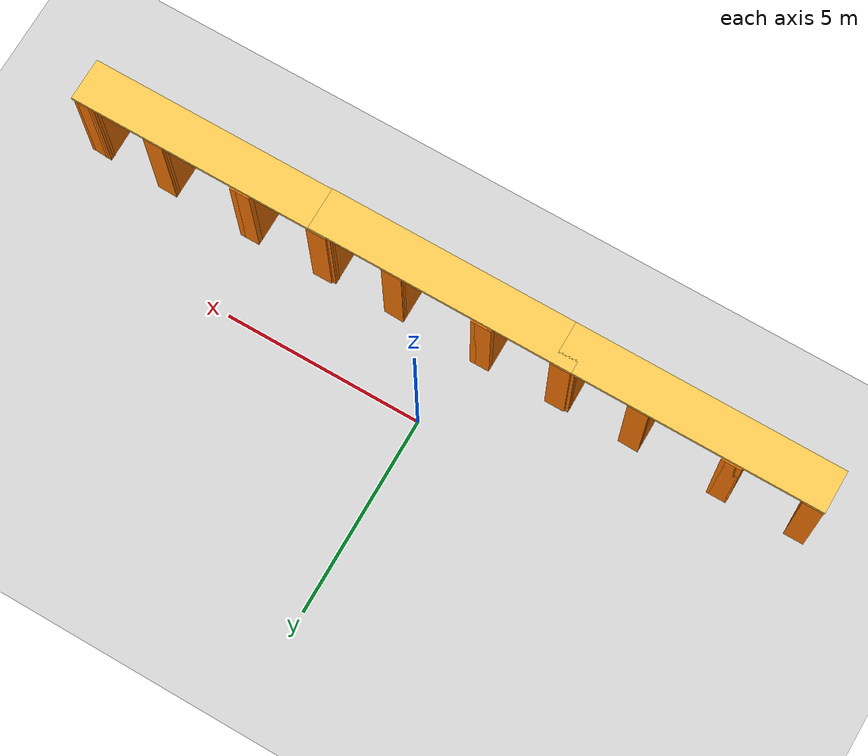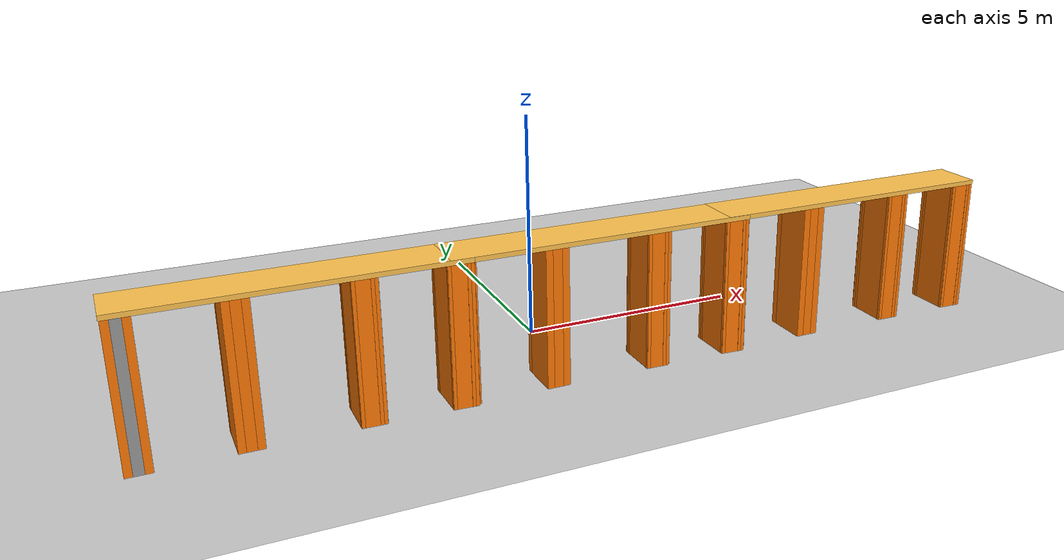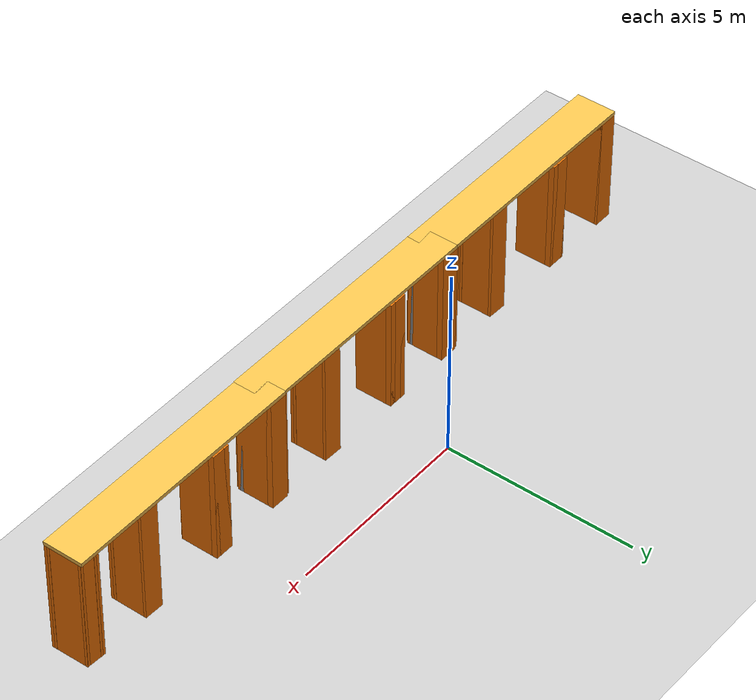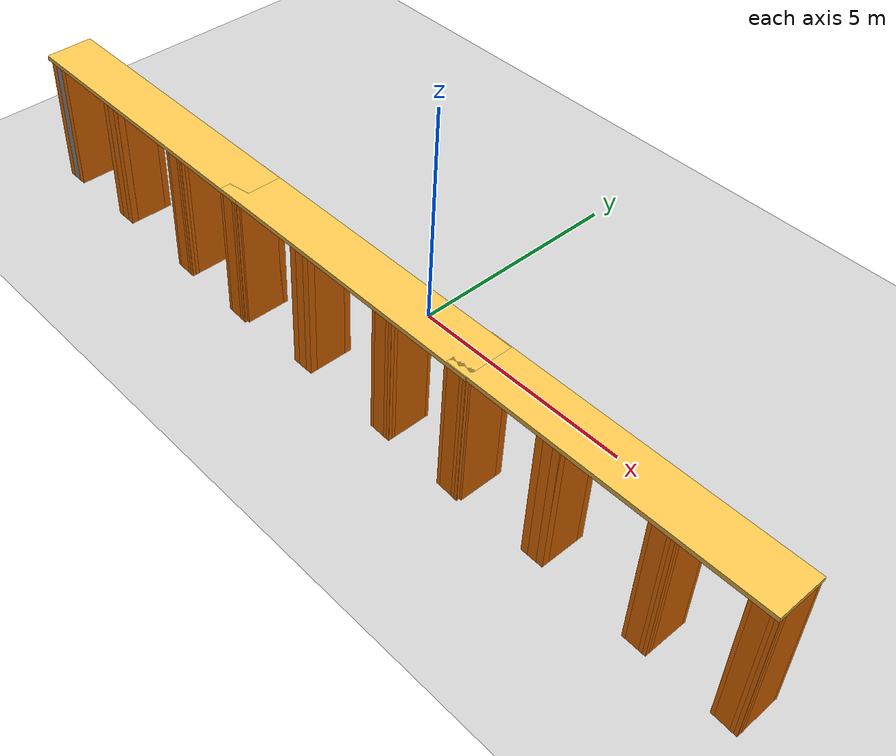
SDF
<sdf version="1.7">
 <world name="default">
  <light name="sun" type="directional">
   <pose>0 0 10 0 -0 0</pose>
   <diffuse>0.8 0.8 0.8 1</diffuse>
   <specular>0.2 0.2 0.2 1</specular>
   <attenuation>
    <range>1000</range>
    <constant>0.9</constant>
    <linear>0.01</linear>
    <quadratic>0.001</quadratic>
   </attenuation>
   <direction>-0.5 0.1 -0.9</direction>
   <spot><inner_angle>0</inner_angle><outer_angle>0</outer_angle><falloff>0</falloff></spot>
  </light>
  <model name="ground_plane">
   <static>1</static>
   <link name="link">
    <collision name="collision">
     <geometry><plane><normal>0 0 1</normal><size>100 100</size></plane></geometry>
     <surface>
      <contact><collide_bitmask>65535</collide_bitmask></contact>
      <friction><ode><mu>100</mu><mu2>50</mu2></ode></friction>
     </surface>
    </collision>
    <visual name="visual">
     <cast_shadows>0</cast_shadows>
     <geometry><plane><normal>0 0 1</normal><size>100 100</size></plane></geometry>
     <material>
      <script><uri>file://media/materials/scripts/gazebo.material</uri><name>Gazebo/Grey</name></script>
     </material>
    </visual>
   </link>
  </model>
  <gravity>0 0 -9.8</gravity>
  <magnetic_field>6e-06 2.3e-05 -4.2e-05</magnetic_field>
  <atmosphere type="adiabatic"/>
  <physics type="ode">
   <max_step_size>0.001</max_step_size>
   <real_time_factor>1</real_time_factor>
   <real_time_update_rate>1000</real_time_update_rate>
  </physics>
  <scene><ambient>0.4 0.4 0.4 1</ambient><background>0.7 0.7 0.7 1</background><shadows>1</shadows></scene>
  <audio><device>default</device></audio>
  <spherical_coordinates>
   <surface_model>EARTH_WGS84</surface_model>
   <latitude_deg>0</latitude_deg>
   <longitude_deg>0</longitude_deg>
   <elevation>0</elevation>
   <heading_deg>0</heading_deg>
  </spherical_coordinates>
  <model name="Bridge">
   <pose>0.544212 -1.45555 0 0 -0 0</pose>
   <link name="Floor_8">
    <collision name="Floor_8_Collision">
     <geometry><box><size>6.54635 1.04767 0.1</size></box></geometry>
     <pose>0 0 0.05 0 -0 0</pose>
    </collision>
    <visual name="Floor_8_Visual">
     <pose>0 0 0.05 0 -0 0</pose>
     <geometry><box><size>6.54635 1.04767 0.1</size></box></geometry>
     <material>
      <script><uri>file://media/materials/scripts/gazebo.material</uri><name>Gazebo/Grey</name></script>
      <ambient>1 0.764706 0.305882 1</ambient>
     </material>
     <meta><layer>1</layer></meta>
    </visual>
    <pose>-0.00145 -0.931714 3 0 -0 0</pose>
   </link>
   <link name="Wall_108">
    <collision name="Wall_108_Collision">
     <geometry><box><size>1.00518 0.15 0.01</size></box></geometry>
     <pose>0 0 0.005 0 -0 0</pose>
    </collision>
    <visual name="Wall_108_Visual">
     <pose>0 0 0.005 0 -0 0</pose>
     <geometry><box><size>1.00518 0.15 0.01</size></box></geometry>
     <material>
      <script><uri>file://media/materials/scripts/gazebo.material</uri><name>Gazebo/Grey</name></script>
      <ambient>1 1 1 1</ambient>
     </material>
     <meta><layer>1</layer></meta>
    </visual>
    <pose>3.19079 -0.951952 3 0 -0 1.58249</pose>
   </link>
   <link name="Wall_113">
    <collision name="Wall_113_Collision">
     <geometry><box><size>0.977316 0.15 0.01</size></box></geometry>
     <pose>0 0 0.005 0 -0 0</pose>
    </collision>
    <visual name="Wall_113_Visual">
     <pose>0 0 0.005 0 -0 0</pose>
     <geometry><box><size>0.977316 0.15 0.01</size></box></geometry>
     <material>
      <script><uri>file://media/materials/scripts/gazebo.material</uri><name>Gazebo/Grey</name></script>
      <ambient>1 1 1 1</ambient>
     </material>
     <meta><layer>1</layer></meta>
    </visual>
    <pose>-3.19071 -0.897952 3 0 -0 -1.58893</pose>
   </link>
   <link name="Wall_19">
    <collision name="Wall_19_Collision">
     <geometry><box><size>0.5 0.15 3</size></box></geometry>
     <pose>0 0 1.5 0 -0 0</pose>
    </collision>
    <visual name="Wall_19_Visual">
     <pose>0 0 1.5 0 -0 0</pose>
     <geometry><box><size>0.5 0.15 3</size></box></geometry>
     <material>
      <script><uri>file://media/materials/scripts/gazebo.material</uri><name>Gazebo/Grey</name></script>
      <ambient>0.996078 0.47451 0.0196078 1</ambient>
     </material>
     <meta><layer>0</layer></meta>
    </visual>
    <pose>-1.07921 -1.29445 0 0 -0 0</pose>
   </link>
   <link name="Wall_20">
    <collision name="Wall_20_Collision">
     <geometry><box><size>1 0.15 3</size></box></geometry>
     <pose>0 0 1.5 0 -0 0</pose>
    </collision>
    <visual name="Wall_20_Visual">
     <pose>0 0 1.5 0 -0 0</pose>
     <geometry><box><size>1 0.15 3</size></box></geometry>
     <material>
      <script><uri>file://media/materials/scripts/gazebo.material</uri><name>Gazebo/Grey</name></script>
      <ambient>0.996078 0.47451 0.0196078 1</ambient>
     </material>
     <meta><layer>0</layer></meta>
    </visual>
    <pose>-0.904212 -0.869452 0 0 -0 1.5708</pose>
   </link>
   <link name="Wall_21">
    <collision name="Wall_21_Collision">
     <geometry><box><size>0.5 0.15 3</size></box></geometry>
     <pose>0 0 1.5 0 -0 0</pose>
    </collision>
    <visual name="Wall_21_Visual">
     <pose>0 0 1.5 0 -0 0</pose>
     <geometry><box><size>0.5 0.15 3</size></box></geometry>
     <material>
      <script><uri>file://media/materials/scripts/gazebo.material</uri><name>Gazebo/Grey</name></script>
      <ambient>0.996078 0.47451 0.0196078 1</ambient>
     </material>
     <meta><layer>0</layer></meta>
    </visual>
    <pose>-1.07921 -0.444452 0 0 -0 3.14159</pose>
   </link>
   <link name="Wall_22">
    <collision name="Wall_22_Collision">
     <geometry><box><size>1 0.15 3</size></box></geometry>
     <pose>0 0 1.5 0 -0 0</pose>
    </collision>
    <visual name="Wall_22_Visual">
     <pose>0 0 1.5 0 -0 0</pose>
     <geometry><box><size>1 0.15 3</size></box></geometry>
     <material>
      <script><uri>file://media/materials/scripts/gazebo.material</uri><name>Gazebo/Grey</name></script>
      <ambient>0.996078 0.47451 0.0196078 1</ambient>
     </material>
     <meta><layer>0</layer></meta>
    </visual>
    <pose>-1.25421 -0.869452 0 0 -0 -1.5708</pose>
   </link>
   <link name="Wall_24">
    <collision name="Wall_24_Collision">
     <geometry><box><size>0.510139 0.15 3</size></box></geometry>
     <pose>0 0 1.5 0 -0 0</pose>
    </collision>
    <visual name="Wall_24_Visual">
     <pose>0 0 1.5 0 -0 0</pose>
     <geometry><box><size>0.510139 0.15 3</size></box></geometry>
     <material>
      <script><uri>file://media/materials/scripts/gazebo.material</uri><name>Gazebo/Grey</name></script>
      <ambient>0.996078 0.47451 0.0196078 1</ambient>
     </material>
     <meta><layer>0</layer></meta>
    </visual>
    <pose>1.18579 -1.31945 0 0 -0 -0.027771</pose>
   </link>
   <link name="Wall_25">
    <collision name="Wall_25_Collision">
     <geometry><box><size>0.97 0.15 3</size></box></geometry>
     <pose>0 0 1.5 0 -0 0</pose>
    </collision>
    <visual name="Wall_25_Visual">
     <pose>0 0 1.5 0 -0 0</pose>
     <geometry><box><size>0.97 0.15 3</size></box></geometry>
     <material>
      <script><uri>file://media/materials/scripts/gazebo.material</uri><name>Gazebo/Grey</name></script>
      <ambient>0.996078 0.47451 0.0196078 1</ambient>
     </material>
     <meta><layer>0</layer></meta>
    </visual>
    <pose>1.36579 -0.914452 0 0 -0 1.5708</pose>
   </link>
   <link name="Wall_26">
    <collision name="Wall_26_Collision">
     <geometry><box><size>0.510139 0.15 3</size></box></geometry>
     <pose>0 0 1.5 0 -0 0</pose>
    </collision>
    <visual name="Wall_26_Visual">
     <pose>0 0 1.5 0 -0 0</pose>
     <geometry><box><size>0.510139 0.15 3</size></box></geometry>
     <material>
      <script><uri>file://media/materials/scripts/gazebo.material</uri><name>Gazebo/Grey</name></script>
      <ambient>0.996078 0.47451 0.0196078 1</ambient>
     </material>
     <meta><layer>0</layer></meta>
    </visual>
    <pose>1.18579 -0.489452 0 0 -0 3.11382</pose>
   </link>
   <link name="Wall_27">
    <collision name="Wall_27_Collision">
     <geometry><box><size>0.97 0.15 3</size></box></geometry>
     <pose>0 0 1.5 0 -0 0</pose>
    </collision>
    <visual name="Wall_27_Visual">
     <pose>0 0 1.5 0 -0 0</pose>
     <geometry><box><size>0.97 0.15 3</size></box></geometry>
     <material>
      <script><uri>file://media/materials/scripts/gazebo.material</uri><name>Gazebo/Grey</name></script>
      <ambient>0.996078 0.47451 0.0196078 1</ambient>
     </material>
     <meta><layer>0</layer></meta>
    </visual>
    <pose>1.00579 -0.904452 0 0 -0 -1.5708</pose>
   </link>
   <link name="Wall_31">
    <collision name="Wall_31_Collision">
     <geometry><box><size>0.530526 0.15 3</size></box></geometry>
     <pose>0 0 1.5 0 -0 0</pose>
    </collision>
    <visual name="Wall_31_Visual">
     <pose>0 0 1.5 0 -0 0</pose>
     <geometry><box><size>0.530526 0.15 3</size></box></geometry>
     <material>
      <script><uri>file://media/materials/scripts/gazebo.material</uri><name>Gazebo/Grey</name></script>
      <ambient>0.996078 0.47451 0.0196078 1</ambient>
     </material>
     <meta><layer>0</layer></meta>
    </visual>
    <pose>3.00579 -1.35445 0 0 -0 -0.052583</pose>
   </link>
   <link name="Wall_32">
    <collision name="Wall_32_Collision">
     <geometry><box><size>0.99006 0.15 3</size></box></geometry>
     <pose>0 0 1.5 0 -0 0</pose>
    </collision>
    <visual name="Wall_32_Visual">
     <pose>0 0 1.5 0 -0 0</pose>
     <geometry><box><size>0.99006 0.15 3</size></box></geometry>
     <material>
      <script><uri>file://media/materials/scripts/gazebo.material</uri><name>Gazebo/Grey</name></script>
      <ambient>0.996078 0.47451 0.0196078 1</ambient>
     </material>
     <meta><layer>0</layer></meta>
    </visual>
    <pose>3.19079 -0.944452 0 0 -0 1.5827</pose>
   </link>
   <link name="Wall_33">
    <collision name="Wall_33_Collision">
     <geometry><box><size>0.530526 0.15 3</size></box></geometry>
     <pose>0 0 1.5 0 -0 0</pose>
    </collision>
    <visual name="Wall_33_Visual">
     <pose>0 0 1.5 0 -0 0</pose>
     <geometry><box><size>0.530526 0.15 3</size></box></geometry>
     <material>
      <script><uri>file://media/materials/scripts/gazebo.material</uri><name>Gazebo/Grey</name></script>
      <ambient>0.996078 0.47451 0.0196078 1</ambient>
     </material>
     <meta><layer>0</layer></meta>
    </visual>
    <pose>2.99579 -0.514452 0 0 -0 3.08901</pose>
   </link>
   <link name="Wall_34">
    <collision name="Wall_34_Collision">
     <geometry><box><size>0.99006 0.15 3</size></box></geometry>
     <pose>0 0 1.5 0 -0 0</pose>
    </collision>
    <visual name="Wall_34_Visual">
     <pose>0 0 1.5 0 -0 0</pose>
     <geometry><box><size>0.99006 0.15 3</size></box></geometry>
     <material>
      <script><uri>file://media/materials/scripts/gazebo.material</uri><name>Gazebo/Grey</name></script>
      <ambient>0.996078 0.47451 0.0196078 1</ambient>
     </material>
     <meta><layer>0</layer></meta>
    </visual>
    <pose>2.81079 -0.924452 0 0 -0 -1.55889</pose>
   </link>
   <link name="Wall_90">
    <collision name="Wall_90_Collision">
     <geometry><box><size>0.977316 0.15 3</size></box></geometry>
     <pose>0 0 1.5 0 -0 0</pose>
    </collision>
    <visual name="Wall_90_Visual">
     <pose>0 0 1.5 0 -0 0</pose>
     <geometry><box><size>0.977316 0.15 3</size></box></geometry>
     <material>
      <script><uri>file://media/materials/scripts/gazebo.material</uri><name>Gazebo/Grey</name></script>
      <ambient>0.996078 0.47451 0.0196078 1</ambient>
     </material>
     <meta><layer>0</layer></meta>
    </visual>
    <pose>-2.83321 -0.897794 0 0 -0 1.5708</pose>
   </link>
   <link name="Wall_91">
    <collision name="Wall_91_Collision">
     <geometry><box><size>0.5 0.15 3</size></box></geometry>
     <pose>0 0 1.5 0 -0 0</pose>
    </collision>
    <visual name="Wall_91_Visual">
     <pose>0 0 1.5 0 -0 0</pose>
     <geometry><box><size>0.5 0.15 3</size></box></geometry>
     <material>
      <script><uri>file://media/materials/scripts/gazebo.material</uri><name>Gazebo/Grey</name></script>
      <ambient>0.996078 0.47451 0.0196078 1</ambient>
     </material>
     <meta><layer>0</layer></meta>
    </visual>
    <pose>-3.00821 -0.476575 0 0 -0 3.14159</pose>
   </link>
   <link name="Wall_92">
    <collision name="Wall_92_Collision">
     <geometry><box><size>0.977316 0.15 3</size></box></geometry>
     <pose>0 0 1.5 0 -0 0</pose>
    </collision>
    <visual name="Wall_92_Visual">
     <pose>0 0 1.5 0 -0 0</pose>
     <geometry><box><size>0.977316 0.15 3</size></box></geometry>
     <material>
      <script><uri>file://media/materials/scripts/gazebo.material</uri><name>Gazebo/Grey</name></script>
      <ambient>0.996078 0.47451 0.0196078 1</ambient>
     </material>
     <meta><layer>0</layer></meta>
    </visual>
    <pose>-3.18321 -0.897794 0 0 -0 -1.5708</pose>
   </link>
   <link name="Wall_93">
    <collision name="Wall_93_Collision">
     <geometry><box><size>0.5 0.15 3</size></box></geometry>
     <pose>0 0 1.5 0 -0 0</pose>
    </collision>
    <visual name="Wall_93_Visual">
     <pose>0 0 1.5 0 -0 0</pose>
     <geometry><box><size>0.5 0.15 3</size></box></geometry>
     <material>
      <script><uri>file://media/materials/scripts/gazebo.material</uri><name>Gazebo/Grey</name></script>
      <ambient>1 1 1 1</ambient>
     </material>
     <meta><layer>0</layer></meta>
    </visual>
    <pose>-3.00821 -1.31145 0 0 -0 0</pose>
   </link>
   <static>1</static>
  </model>
  <model name="Bridge_0">
   <pose>-5.5371 -1.45832 0 0 -0 0</pose>
   <link name="Floor_8">
    <collision name="Floor_8_Collision">
     <geometry><box><size>6.54635 1.04767 0.1</size></box></geometry>
     <pose>0 0 0.05 0 -0 0</pose>
    </collision>
    <visual name="Floor_8_Visual">
     <pose>0 0 0.05 0 -0 0</pose>
     <geometry><box><size>6.54635 1.04767 0.1</size></box></geometry>
     <material>
      <script><uri>file://media/materials/scripts/gazebo.material</uri><name>Gazebo/Grey</name></script>
      <ambient>1 0.764706 0.305882 1</ambient>
     </material>
     <meta><layer>1</layer></meta>
    </visual>
    <pose>-0.00145 -0.931714 3 0 -0 0</pose>
   </link>
   <link name="Wall_108">
    <collision name="Wall_108_Collision">
     <geometry><box><size>1.00518 0.15 0.01</size></box></geometry>
     <pose>0 0 0.005 0 -0 0</pose>
    </collision>
    <visual name="Wall_108_Visual">
     <pose>0 0 0.005 0 -0 0</pose>
     <geometry><box><size>1.00518 0.15 0.01</size></box></geometry>
     <material>
      <script><uri>file://media/materials/scripts/gazebo.material</uri><name>Gazebo/Grey</name></script>
      <ambient>1 1 1 1</ambient>
     </material>
     <meta><layer>1</layer></meta>
    </visual>
    <pose>3.19079 -0.951952 3 0 -0 1.58249</pose>
   </link>
   <link name="Wall_113">
    <collision name="Wall_113_Collision">
     <geometry><box><size>0.977316 0.15 0.01</size></box></geometry>
     <pose>0 0 0.005 0 -0 0</pose>
    </collision>
    <visual name="Wall_113_Visual">
     <pose>0 0 0.005 0 -0 0</pose>
     <geometry><box><size>0.977316 0.15 0.01</size></box></geometry>
     <material>
      <script><uri>file://media/materials/scripts/gazebo.material</uri><name>Gazebo/Grey</name></script>
      <ambient>1 1 1 1</ambient>
     </material>
     <meta><layer>1</layer></meta>
    </visual>
    <pose>-3.19071 -0.897952 3 0 -0 -1.58893</pose>
   </link>
   <link name="Wall_19">
    <collision name="Wall_19_Collision">
     <geometry><box><size>0.5 0.15 3</size></box></geometry>
     <pose>0 0 1.5 0 -0 0</pose>
    </collision>
    <visual name="Wall_19_Visual">
     <pose>0 0 1.5 0 -0 0</pose>
     <geometry><box><size>0.5 0.15 3</size></box></geometry>
     <material>
      <script><uri>file://media/materials/scripts/gazebo.material</uri><name>Gazebo/Grey</name></script>
      <ambient>0.996078 0.47451 0.0196078 1</ambient>
     </material>
     <meta><layer>0</layer></meta>
    </visual>
    <pose>-1.07921 -1.29445 0 0 -0 0</pose>
   </link>
   <link name="Wall_20">
    <collision name="Wall_20_Collision">
     <geometry><box><size>1 0.15 3</size></box></geometry>
     <pose>0 0 1.5 0 -0 0</pose>
    </collision>
    <visual name="Wall_20_Visual">
     <pose>0 0 1.5 0 -0 0</pose>
     <geometry><box><size>1 0.15 3</size></box></geometry>
     <material>
      <script><uri>file://media/materials/scripts/gazebo.material</uri><name>Gazebo/Grey</name></script>
      <ambient>0.996078 0.47451 0.0196078 1</ambient>
     </material>
     <meta><layer>0</layer></meta>
    </visual>
    <pose>-0.904212 -0.869452 0 0 -0 1.5708</pose>
   </link>
   <link name="Wall_21">
    <collision name="Wall_21_Collision">
     <geometry><box><size>0.5 0.15 3</size></box></geometry>
     <pose>0 0 1.5 0 -0 0</pose>
    </collision>
    <visual name="Wall_21_Visual">
     <pose>0 0 1.5 0 -0 0</pose>
     <geometry><box><size>0.5 0.15 3</size></box></geometry>
     <material>
      <script><uri>file://media/materials/scripts/gazebo.material</uri><name>Gazebo/Grey</name></script>
      <ambient>0.996078 0.47451 0.0196078 1</ambient>
     </material>
     <meta><layer>0</layer></meta>
    </visual>
    <pose>-1.07921 -0.444452 0 0 -0 3.14159</pose>
   </link>
   <link name="Wall_22">
    <collision name="Wall_22_Collision">
     <geometry><box><size>1 0.15 3</size></box></geometry>
     <pose>0 0 1.5 0 -0 0</pose>
    </collision>
    <visual name="Wall_22_Visual">
     <pose>0 0 1.5 0 -0 0</pose>
     <geometry><box><size>1 0.15 3</size></box></geometry>
     <material>
      <script><uri>file://media/materials/scripts/gazebo.material</uri><name>Gazebo/Grey</name></script>
      <ambient>0.996078 0.47451 0.0196078 1</ambient>
     </material>
     <meta><layer>0</layer></meta>
    </visual>
    <pose>-1.25421 -0.869452 0 0 -0 -1.5708</pose>
   </link>
   <link name="Wall_24">
    <collision name="Wall_24_Collision">
     <geometry><box><size>0.510139 0.15 3</size></box></geometry>
     <pose>0 0 1.5 0 -0 0</pose>
    </collision>
    <visual name="Wall_24_Visual">
     <pose>0 0 1.5 0 -0 0</pose>
     <geometry><box><size>0.510139 0.15 3</size></box></geometry>
     <material>
      <script><uri>file://media/materials/scripts/gazebo.material</uri><name>Gazebo/Grey</name></script>
      <ambient>0.996078 0.47451 0.0196078 1</ambient>
     </material>
     <meta><layer>0</layer></meta>
    </visual>
    <pose>1.18579 -1.31945 0 0 -0 -0.027771</pose>
   </link>
   <link name="Wall_25">
    <collision name="Wall_25_Collision">
     <geometry><box><size>0.97 0.15 3</size></box></geometry>
     <pose>0 0 1.5 0 -0 0</pose>
    </collision>
    <visual name="Wall_25_Visual">
     <pose>0 0 1.5 0 -0 0</pose>
     <geometry><box><size>0.97 0.15 3</size></box></geometry>
     <material>
      <script><uri>file://media/materials/scripts/gazebo.material</uri><name>Gazebo/Grey</name></script>
      <ambient>0.996078 0.47451 0.0196078 1</ambient>
     </material>
     <meta><layer>0</layer></meta>
    </visual>
    <pose>1.36579 -0.914452 0 0 -0 1.5708</pose>
   </link>
   <link name="Wall_26">
    <collision name="Wall_26_Collision">
     <geometry><box><size>0.510139 0.15 3</size></box></geometry>
     <pose>0 0 1.5 0 -0 0</pose>
    </collision>
    <visual name="Wall_26_Visual">
     <pose>0 0 1.5 0 -0 0</pose>
     <geometry><box><size>0.510139 0.15 3</size></box></geometry>
     <material>
      <script><uri>file://media/materials/scripts/gazebo.material</uri><name>Gazebo/Grey</name></script>
      <ambient>0.996078 0.47451 0.0196078 1</ambient>
     </material>
     <meta><layer>0</layer></meta>
    </visual>
    <pose>1.18579 -0.489452 0 0 -0 3.11382</pose>
   </link>
   <link name="Wall_27">
    <collision name="Wall_27_Collision">
     <geometry><box><size>0.97 0.15 3</size></box></geometry>
     <pose>0 0 1.5 0 -0 0</pose>
    </collision>
    <visual name="Wall_27_Visual">
     <pose>0 0 1.5 0 -0 0</pose>
     <geometry><box><size>0.97 0.15 3</size></box></geometry>
     <material>
      <script><uri>file://media/materials/scripts/gazebo.material</uri><name>Gazebo/Grey</name></script>
      <ambient>0.996078 0.47451 0.0196078 1</ambient>
     </material>
     <meta><layer>0</layer></meta>
    </visual>
    <pose>1.00579 -0.904452 0 0 -0 -1.5708</pose>
   </link>
   <link name="Wall_31">
    <collision name="Wall_31_Collision">
     <geometry><box><size>0.530526 0.15 3</size></box></geometry>
     <pose>0 0 1.5 0 -0 0</pose>
    </collision>
    <visual name="Wall_31_Visual">
     <pose>0 0 1.5 0 -0 0</pose>
     <geometry><box><size>0.530526 0.15 3</size></box></geometry>
     <material>
      <script><uri>file://media/materials/scripts/gazebo.material</uri><name>Gazebo/Grey</name></script>
      <ambient>0.996078 0.47451 0.0196078 1</ambient>
     </material>
     <meta><layer>0</layer></meta>
    </visual>
    <pose>3.00579 -1.35445 0 0 -0 -0.052583</pose>
   </link>
   <link name="Wall_32">
    <collision name="Wall_32_Collision">
     <geometry><box><size>0.99006 0.15 3</size></box></geometry>
     <pose>0 0 1.5 0 -0 0</pose>
    </collision>
    <visual name="Wall_32_Visual">
     <pose>0 0 1.5 0 -0 0</pose>
     <geometry><box><size>0.99006 0.15 3</size></box></geometry>
     <material>
      <script><uri>file://media/materials/scripts/gazebo.material</uri><name>Gazebo/Grey</name></script>
      <ambient>0.996078 0.47451 0.0196078 1</ambient>
     </material>
     <meta><layer>0</layer></meta>
    </visual>
    <pose>3.19079 -0.944452 0 0 -0 1.5827</pose>
   </link>
   <link name="Wall_33">
    <collision name="Wall_33_Collision">
     <geometry><box><size>0.530526 0.15 3</size></box></geometry>
     <pose>0 0 1.5 0 -0 0</pose>
    </collision>
    <visual name="Wall_33_Visual">
     <pose>0 0 1.5 0 -0 0</pose>
     <geometry><box><size>0.530526 0.15 3</size></box></geometry>
     <material>
      <script><uri>file://media/materials/scripts/gazebo.material</uri><name>Gazebo/Grey</name></script>
      <ambient>0.996078 0.47451 0.0196078 1</ambient>
     </material>
     <meta><layer>0</layer></meta>
    </visual>
    <pose>2.99579 -0.514452 0 0 -0 3.08901</pose>
   </link>
   <link name="Wall_34">
    <collision name="Wall_34_Collision">
     <geometry><box><size>0.99006 0.15 3</size></box></geometry>
     <pose>0 0 1.5 0 -0 0</pose>
    </collision>
    <visual name="Wall_34_Visual">
     <pose>0 0 1.5 0 -0 0</pose>
     <geometry><box><size>0.99006 0.15 3</size></box></geometry>
     <material>
      <script><uri>file://media/materials/scripts/gazebo.material</uri><name>Gazebo/Grey</name></script>
      <ambient>0.996078 0.47451 0.0196078 1</ambient>
     </material>
     <meta><layer>0</layer></meta>
    </visual>
    <pose>2.81079 -0.924452 0 0 -0 -1.55889</pose>
   </link>
   <link name="Wall_90">
    <collision name="Wall_90_Collision">
     <geometry><box><size>0.977316 0.15 3</size></box></geometry>
     <pose>0 0 1.5 0 -0 0</pose>
    </collision>
    <visual name="Wall_90_Visual">
     <pose>0 0 1.5 0 -0 0</pose>
     <geometry><box><size>0.977316 0.15 3</size></box></geometry>
     <material>
      <script><uri>file://media/materials/scripts/gazebo.material</uri><name>Gazebo/Grey</name></script>
      <ambient>0.996078 0.47451 0.0196078 1</ambient>
     </material>
     <meta><layer>0</layer></meta>
    </visual>
    <pose>-2.83321 -0.897794 0 0 -0 1.5708</pose>
   </link>
   <link name="Wall_91">
    <collision name="Wall_91_Collision">
     <geometry><box><size>0.5 0.15 3</size></box></geometry>
     <pose>0 0 1.5 0 -0 0</pose>
    </collision>
    <visual name="Wall_91_Visual">
     <pose>0 0 1.5 0 -0 0</pose>
     <geometry><box><size>0.5 0.15 3</size></box></geometry>
     <material>
      <script><uri>file://media/materials/scripts/gazebo.material</uri><name>Gazebo/Grey</name></script>
      <ambient>0.996078 0.47451 0.0196078 1</ambient>
     </material>
     <meta><layer>0</layer></meta>
    </visual>
    <pose>-3.00821 -0.476575 0 0 -0 3.14159</pose>
   </link>
   <link name="Wall_92">
    <collision name="Wall_92_Collision">
     <geometry><box><size>0.977316 0.15 3</size></box></geometry>
     <pose>0 0 1.5 0 -0 0</pose>
    </collision>
    <visual name="Wall_92_Visual">
     <pose>0 0 1.5 0 -0 0</pose>
     <geometry><box><size>0.977316 0.15 3</size></box></geometry>
     <material>
      <script><uri>file://media/materials/scripts/gazebo.material</uri><name>Gazebo/Grey</name></script>
      <ambient>0.996078 0.47451 0.0196078 1</ambient>
     </material>
     <meta><layer>0</layer></meta>
    </visual>
    <pose>-3.18321 -0.897794 0 0 -0 -1.5708</pose>
   </link>
   <link name="Wall_93">
    <collision name="Wall_93_Collision">
     <geometry><box><size>0.5 0.15 3</size></box></geometry>
     <pose>0 0 1.5 0 -0 0</pose>
    </collision>
    <visual name="Wall_93_Visual">
     <pose>0 0 1.5 0 -0 0</pose>
     <geometry><box><size>0.5 0.15 3</size></box></geometry>
     <material>
      <script><uri>file://media/materials/scripts/gazebo.material</uri><name>Gazebo/Grey</name></script>
      <ambient>1 1 1 1</ambient>
     </material>
     <meta><layer>0</layer></meta>
    </visual>
    <pose>-3.00821 -1.31145 0 0 -0 0</pose>
   </link>
   <static>1</static>
  </model>
  <model name="Bridge_1">
   <pose>6.62169 -1.43953 0 0 -0 0</pose>
   <link name="Floor_8">
    <collision name="Floor_8_Collision">
     <geometry><box><size>6.54635 1.04767 0.1</size></box></geometry>
     <pose>0 0 0.05 0 -0 0</pose>
    </collision>
    <visual name="Floor_8_Visual">
     <pose>0 0 0.05 0 -0 0</pose>
     <geometry><box><size>6.54635 1.04767 0.1</size></box></geometry>
     <material>
      <script><uri>file://media/materials/scripts/gazebo.material</uri><name>Gazebo/Grey</name></script>
      <ambient>1 0.764706 0.305882 1</ambient>
     </material>
     <meta><layer>1</layer></meta>
    </visual>
    <pose>-0.00145 -0.931714 3 0 -0 0</pose>
   </link>
   <link name="Wall_108">
    <collision name="Wall_108_Collision">
     <geometry><box><size>1.00518 0.15 0.01</size></box></geometry>
     <pose>0 0 0.005 0 -0 0</pose>
    </collision>
    <visual name="Wall_108_Visual">
     <pose>0 0 0.005 0 -0 0</pose>
     <geometry><box><size>1.00518 0.15 0.01</size></box></geometry>
     <material>
      <script><uri>file://media/materials/scripts/gazebo.material</uri><name>Gazebo/Grey</name></script>
      <ambient>1 1 1 1</ambient>
     </material>
     <meta><layer>1</layer></meta>
    </visual>
    <pose>3.19079 -0.951952 3 0 -0 1.58249</pose>
   </link>
   <link name="Wall_113">
    <collision name="Wall_113_Collision">
     <geometry><box><size>0.977316 0.15 0.01</size></box></geometry>
     <pose>0 0 0.005 0 -0 0</pose>
    </collision>
    <visual name="Wall_113_Visual">
     <pose>0 0 0.005 0 -0 0</pose>
     <geometry><box><size>0.977316 0.15 0.01</size></box></geometry>
     <material>
      <script><uri>file://media/materials/scripts/gazebo.material</uri><name>Gazebo/Grey</name></script>
      <ambient>1 1 1 1</ambient>
     </material>
     <meta><layer>1</layer></meta>
    </visual>
    <pose>-3.19071 -0.897952 3 0 -0 -1.58893</pose>
   </link>
   <link name="Wall_19">
    <collision name="Wall_19_Collision">
     <geometry><box><size>0.5 0.15 3</size></box></geometry>
     <pose>0 0 1.5 0 -0 0</pose>
    </collision>
    <visual name="Wall_19_Visual">
     <pose>0 0 1.5 0 -0 0</pose>
     <geometry><box><size>0.5 0.15 3</size></box></geometry>
     <material>
      <script><uri>file://media/materials/scripts/gazebo.material</uri><name>Gazebo/Grey</name></script>
      <ambient>0.996078 0.47451 0.0196078 1</ambient>
     </material>
     <meta><layer>0</layer></meta>
    </visual>
    <pose>-1.07921 -1.29445 0 0 -0 0</pose>
   </link>
   <link name="Wall_20">
    <collision name="Wall_20_Collision">
     <geometry><box><size>1 0.15 3</size></box></geometry>
     <pose>0 0 1.5 0 -0 0</pose>
    </collision>
    <visual name="Wall_20_Visual">
     <pose>0 0 1.5 0 -0 0</pose>
     <geometry><box><size>1 0.15 3</size></box></geometry>
     <material>
      <script><uri>file://media/materials/scripts/gazebo.material</uri><name>Gazebo/Grey</name></script>
      <ambient>0.996078 0.47451 0.0196078 1</ambient>
     </material>
     <meta><layer>0</layer></meta>
    </visual>
    <pose>-0.904212 -0.869452 0 0 -0 1.5708</pose>
   </link>
   <link name="Wall_21">
    <collision name="Wall_21_Collision">
     <geometry><box><size>0.5 0.15 3</size></box></geometry>
     <pose>0 0 1.5 0 -0 0</pose>
    </collision>
    <visual name="Wall_21_Visual">
     <pose>0 0 1.5 0 -0 0</pose>
     <geometry><box><size>0.5 0.15 3</size></box></geometry>
     <material>
      <script><uri>file://media/materials/scripts/gazebo.material</uri><name>Gazebo/Grey</name></script>
      <ambient>0.996078 0.47451 0.0196078 1</ambient>
     </material>
     <meta><layer>0</layer></meta>
    </visual>
    <pose>-1.07921 -0.444452 0 0 -0 3.14159</pose>
   </link>
   <link name="Wall_22">
    <collision name="Wall_22_Collision">
     <geometry><box><size>1 0.15 3</size></box></geometry>
     <pose>0 0 1.5 0 -0 0</pose>
    </collision>
    <visual name="Wall_22_Visual">
     <pose>0 0 1.5 0 -0 0</pose>
     <geometry><box><size>1 0.15 3</size></box></geometry>
     <material>
      <script><uri>file://media/materials/scripts/gazebo.material</uri><name>Gazebo/Grey</name></script>
      <ambient>0.996078 0.47451 0.0196078 1</ambient>
     </material>
     <meta><layer>0</layer></meta>
    </visual>
    <pose>-1.25421 -0.869452 0 0 -0 -1.5708</pose>
   </link>
   <link name="Wall_24">
    <collision name="Wall_24_Collision">
     <geometry><box><size>0.510139 0.15 3</size></box></geometry>
     <pose>0 0 1.5 0 -0 0</pose>
    </collision>
    <visual name="Wall_24_Visual">
     <pose>0 0 1.5 0 -0 0</pose>
     <geometry><box><size>0.510139 0.15 3</size></box></geometry>
     <material>
      <script><uri>file://media/materials/scripts/gazebo.material</uri><name>Gazebo/Grey</name></script>
      <ambient>0.996078 0.47451 0.0196078 1</ambient>
     </material>
     <meta><layer>0</layer></meta>
    </visual>
    <pose>1.18579 -1.31945 0 0 -0 -0.027771</pose>
   </link>
   <link name="Wall_25">
    <collision name="Wall_25_Collision">
     <geometry><box><size>0.97 0.15 3</size></box></geometry>
     <pose>0 0 1.5 0 -0 0</pose>
    </collision>
    <visual name="Wall_25_Visual">
     <pose>0 0 1.5 0 -0 0</pose>
     <geometry><box><size>0.97 0.15 3</size></box></geometry>
     <material>
      <script><uri>file://media/materials/scripts/gazebo.material</uri><name>Gazebo/Grey</name></script>
      <ambient>0.996078 0.47451 0.0196078 1</ambient>
     </material>
     <meta><layer>0</layer></meta>
    </visual>
    <pose>1.36579 -0.914452 0 0 -0 1.5708</pose>
   </link>
   <link name="Wall_26">
    <collision name="Wall_26_Collision">
     <geometry><box><size>0.510139 0.15 3</size></box></geometry>
     <pose>0 0 1.5 0 -0 0</pose>
    </collision>
    <visual name="Wall_26_Visual">
     <pose>0 0 1.5 0 -0 0</pose>
     <geometry><box><size>0.510139 0.15 3</size></box></geometry>
     <material>
      <script><uri>file://media/materials/scripts/gazebo.material</uri><name>Gazebo/Grey</name></script>
      <ambient>0.996078 0.47451 0.0196078 1</ambient>
     </material>
     <meta><layer>0</layer></meta>
    </visual>
    <pose>1.18579 -0.489452 0 0 -0 3.11382</pose>
   </link>
   <link name="Wall_27">
    <collision name="Wall_27_Collision">
     <geometry><box><size>0.97 0.15 3</size></box></geometry>
     <pose>0 0 1.5 0 -0 0</pose>
    </collision>
    <visual name="Wall_27_Visual">
     <pose>0 0 1.5 0 -0 0</pose>
     <geometry><box><size>0.97 0.15 3</size></box></geometry>
     <material>
      <script><uri>file://media/materials/scripts/gazebo.material</uri><name>Gazebo/Grey</name></script>
      <ambient>0.996078 0.47451 0.0196078 1</ambient>
     </material>
     <meta><layer>0</layer></meta>
    </visual>
    <pose>1.00579 -0.904452 0 0 -0 -1.5708</pose>
   </link>
   <link name="Wall_31">
    <collision name="Wall_31_Collision">
     <geometry><box><size>0.530526 0.15 3</size></box></geometry>
     <pose>0 0 1.5 0 -0 0</pose>
    </collision>
    <visual name="Wall_31_Visual">
     <pose>0 0 1.5 0 -0 0</pose>
     <geometry><box><size>0.530526 0.15 3</size></box></geometry>
     <material>
      <script><uri>file://media/materials/scripts/gazebo.material</uri><name>Gazebo/Grey</name></script>
      <ambient>0.996078 0.47451 0.0196078 1</ambient>
     </material>
     <meta><layer>0</layer></meta>
    </visual>
    <pose>3.00579 -1.35445 0 0 -0 -0.052583</pose>
   </link>
   <link name="Wall_32">
    <collision name="Wall_32_Collision">
     <geometry><box><size>0.99006 0.15 3</size></box></geometry>
     <pose>0 0 1.5 0 -0 0</pose>
    </collision>
    <visual name="Wall_32_Visual">
     <pose>0 0 1.5 0 -0 0</pose>
     <geometry><box><size>0.99006 0.15 3</size></box></geometry>
     <material>
      <script><uri>file://media/materials/scripts/gazebo.material</uri><name>Gazebo/Grey</name></script>
      <ambient>0.996078 0.47451 0.0196078 1</ambient>
     </material>
     <meta><layer>0</layer></meta>
    </visual>
    <pose>3.19079 -0.944452 0 0 -0 1.5827</pose>
   </link>
   <link name="Wall_33">
    <collision name="Wall_33_Collision">
     <geometry><box><size>0.530526 0.15 3</size></box></geometry>
     <pose>0 0 1.5 0 -0 0</pose>
    </collision>
    <visual name="Wall_33_Visual">
     <pose>0 0 1.5 0 -0 0</pose>
     <geometry><box><size>0.530526 0.15 3</size></box></geometry>
     <material>
      <script><uri>file://media/materials/scripts/gazebo.material</uri><name>Gazebo/Grey</name></script>
      <ambient>0.996078 0.47451 0.0196078 1</ambient>
     </material>
     <meta><layer>0</layer></meta>
    </visual>
    <pose>2.99579 -0.514452 0 0 -0 3.08901</pose>
   </link>
   <link name="Wall_34">
    <collision name="Wall_34_Collision">
     <geometry><box><size>0.99006 0.15 3</size></box></geometry>
     <pose>0 0 1.5 0 -0 0</pose>
    </collision>
    <visual name="Wall_34_Visual">
     <pose>0 0 1.5 0 -0 0</pose>
     <geometry><box><size>0.99006 0.15 3</size></box></geometry>
     <material>
      <script><uri>file://media/materials/scripts/gazebo.material</uri><name>Gazebo/Grey</name></script>
      <ambient>0.996078 0.47451 0.0196078 1</ambient>
     </material>
     <meta><layer>0</layer></meta>
    </visual>
    <pose>2.81079 -0.924452 0 0 -0 -1.55889</pose>
   </link>
   <link name="Wall_90">
    <collision name="Wall_90_Collision">
     <geometry><box><size>0.977316 0.15 3</size></box></geometry>
     <pose>0 0 1.5 0 -0 0</pose>
    </collision>
    <visual name="Wall_90_Visual">
     <pose>0 0 1.5 0 -0 0</pose>
     <geometry><box><size>0.977316 0.15 3</size></box></geometry>
     <material>
      <script><uri>file://media/materials/scripts/gazebo.material</uri><name>Gazebo/Grey</name></script>
      <ambient>0.996078 0.47451 0.0196078 1</ambient>
     </material>
     <meta><layer>0</layer></meta>
    </visual>
    <pose>-2.83321 -0.897794 0 0 -0 1.5708</pose>
   </link>
   <link name="Wall_91">
    <collision name="Wall_91_Collision">
     <geometry><box><size>0.5 0.15 3</size></box></geometry>
     <pose>0 0 1.5 0 -0 0</pose>
    </collision>
    <visual name="Wall_91_Visual">
     <pose>0 0 1.5 0 -0 0</pose>
     <geometry><box><size>0.5 0.15 3</size></box></geometry>
     <material>
      <script><uri>file://media/materials/scripts/gazebo.material</uri><name>Gazebo/Grey</name></script>
      <ambient>0.996078 0.47451 0.0196078 1</ambient>
     </material>
     <meta><layer>0</layer></meta>
    </visual>
    <pose>-3.00821 -0.476575 0 0 -0 3.14159</pose>
   </link>
   <link name="Wall_92">
    <collision name="Wall_92_Collision">
     <geometry><box><size>0.977316 0.15 3</size></box></geometry>
     <pose>0 0 1.5 0 -0 0</pose>
    </collision>
    <visual name="Wall_92_Visual">
     <pose>0 0 1.5 0 -0 0</pose>
     <geometry><box><size>0.977316 0.15 3</size></box></geometry>
     <material>
      <script><uri>file://media/materials/scripts/gazebo.material</uri><name>Gazebo/Grey</name></script>
      <ambient>0.996078 0.47451 0.0196078 1</ambient>
     </material>
     <meta><layer>0</layer></meta>
    </visual>
    <pose>-3.18321 -0.897794 0 0 -0 -1.5708</pose>
   </link>
   <link name="Wall_93">
    <collision name="Wall_93_Collision">
     <geometry><box><size>0.5 0.15 3</size></box></geometry>
     <pose>0 0 1.5 0 -0 0</pose>
    </collision>
    <visual name="Wall_93_Visual">
     <pose>0 0 1.5 0 -0 0</pose>
     <geometry><box><size>0.5 0.15 3</size></box></geometry>
     <material>
      <script><uri>file://media/materials/scripts/gazebo.material</uri><name>Gazebo/Grey</name></script>
      <ambient>1 1 1 1</ambient>
     </material>
     <meta><layer>0</layer></meta>
    </visual>
    <pose>-3.00821 -1.31145 0 0 -0 0</pose>
   </link>
   <static>1</static>
  </model>
 </world>
</sdf>
